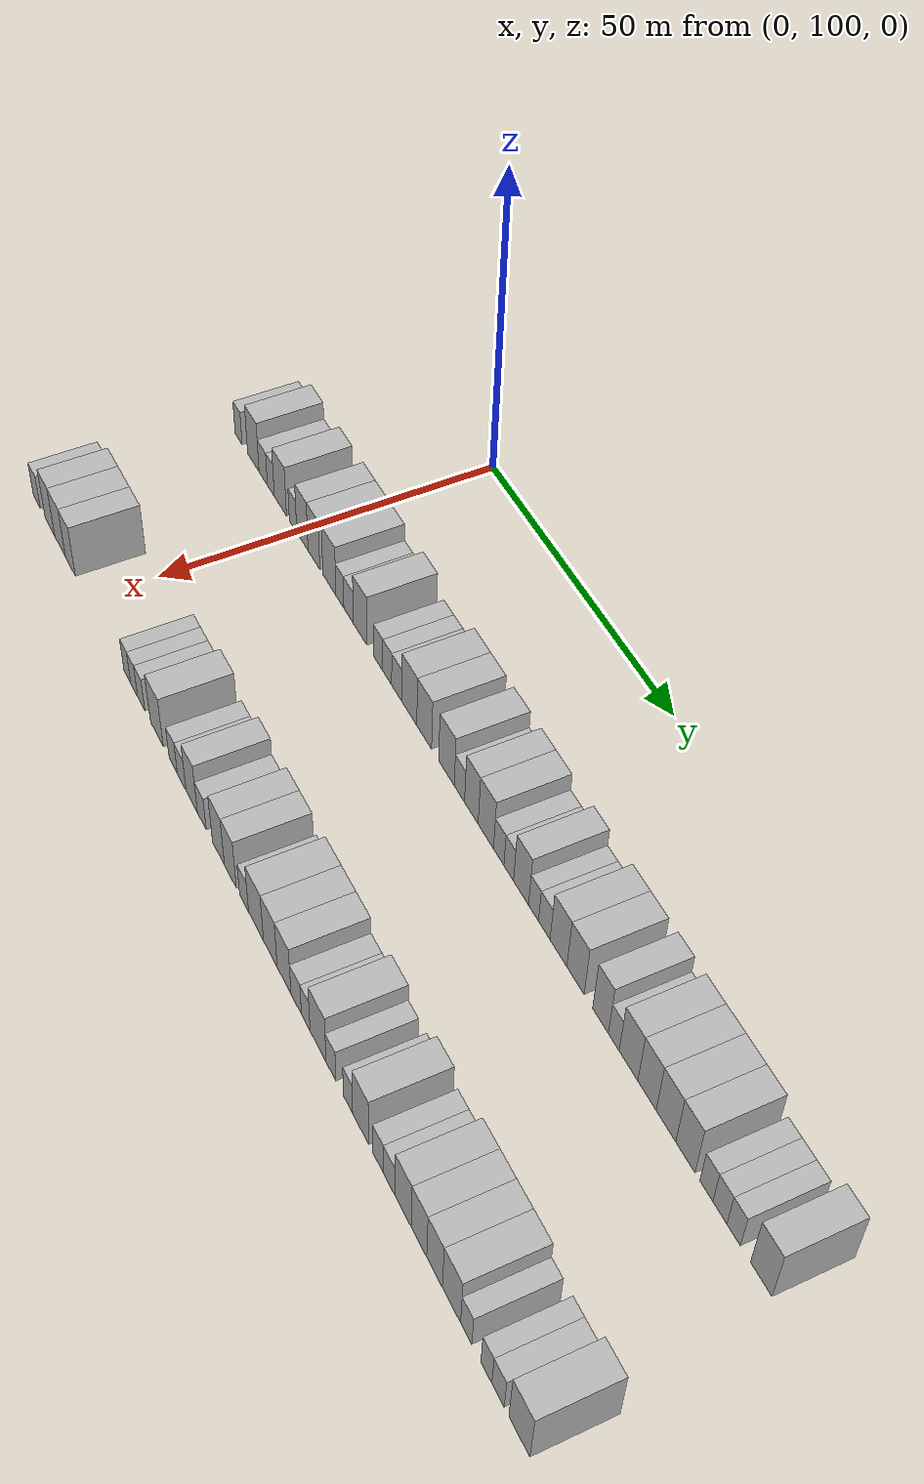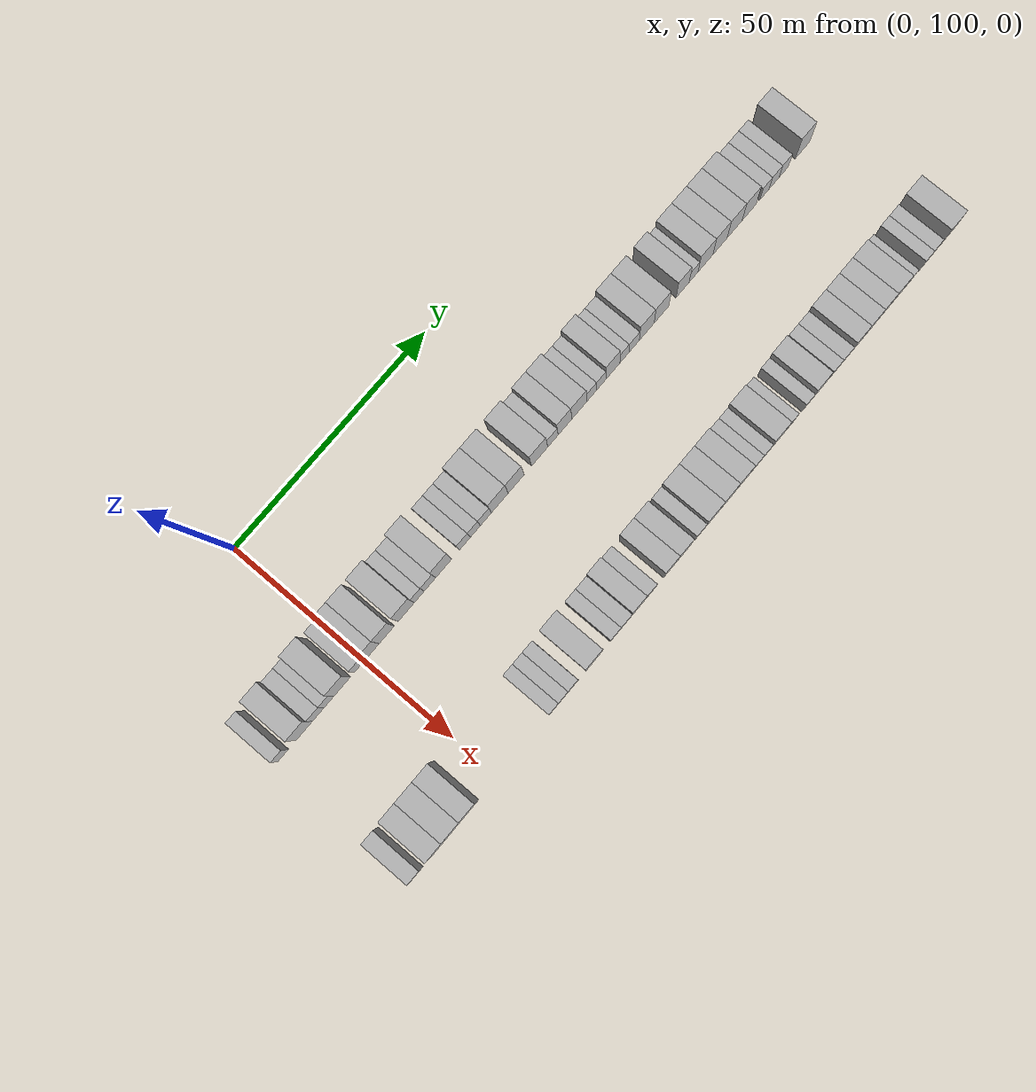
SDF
<sdf version="1.6">
 <world name="default">
  <model name="building_73">
   <static>1</static>
   <pose>25.0000 79.5502 0 0.000000 0.000000 0.000000</pose>
   <link name="link">
    <pose>0 0 3.00 0 0 0</pose>
    <collision name="collision"><geometry><box><size>10.0000 2.5843 6.0000</size></box></geometry></collision>
    <visual name="visual">
     <cast_shadows>0</cast_shadows>
     <geometry><box><size>10.0000 2.5843 6.0000</size></box></geometry>
     <material>
      <script>
       <uri>model://HANNAS_wall/materials/scripts</uri>
       <uri>model://HANNAS_wall/materials/textures</uri>
       <name>vrc/HANNAS_wall</name>
      </script>
     </material>
    </visual>
   </link>
  </model>
  <model name="building_74">
   <static>1</static>
   <pose>25.0000 84.9042 0 0.000000 0.000000 0.000000</pose>
   <link name="link">
    <pose>0 0 4.50 0 0 0</pose>
    <collision name="collision"><geometry><box><size>10.0000 4.1237 9.0000</size></box></geometry></collision>
    <visual name="visual">
     <cast_shadows>0</cast_shadows>
     <geometry><box><size>10.0000 4.1237 9.0000</size></box></geometry>
     <material>
      <script>
       <uri>model://HANNAS_wall/materials/scripts</uri>
       <uri>model://HANNAS_wall/materials/textures</uri>
       <name>vrc/HANNAS_wall</name>
      </script>
     </material>
    </visual>
   </link>
  </model>
  <model name="building_75">
   <static>1</static>
   <pose>25.0000 88.4504 0 0.000000 0.000000 0.000000</pose>
   <link name="link">
    <pose>0 0 3.00 0 0 0</pose>
    <collision name="collision"><geometry><box><size>10.0000 2.9687 6.0000</size></box></geometry></collision>
    <visual name="visual">
     <cast_shadows>0</cast_shadows>
     <geometry><box><size>10.0000 2.9687 6.0000</size></box></geometry>
     <material>
      <script>
       <uri>model://HANNAS_wall/materials/scripts</uri>
       <uri>model://HANNAS_wall/materials/textures</uri>
       <name>vrc/HANNAS_wall</name>
      </script>
     </material>
    </visual>
   </link>
  </model>
  <model name="building_76">
   <static>1</static>
   <pose>25.0000 91.1566 0 0.000000 0.000000 0.000000</pose>
   <link name="link">
    <pose>0 0 3.00 0 0 0</pose>
    <collision name="collision"><geometry><box><size>10.0000 2.4437 6.0000</size></box></geometry></collision>
    <visual name="visual">
     <cast_shadows>0</cast_shadows>
     <geometry><box><size>10.0000 2.4437 6.0000</size></box></geometry>
     <material>
      <script>
       <uri>model://HANNAS_wall/materials/scripts</uri>
       <uri>model://HANNAS_wall/materials/textures</uri>
       <name>vrc/HANNAS_wall</name>
      </script>
     </material>
    </visual>
   </link>
  </model>
  <model name="building_77">
   <static>1</static>
   <pose>25.0000 94.4953 0 0.000000 0.000000 0.000000</pose>
   <link name="link">
    <pose>0 0 4.50 0 0 0</pose>
    <collision name="collision"><geometry><box><size>10.0000 4.2338 9.0000</size></box></geometry></collision>
    <visual name="visual">
     <cast_shadows>0</cast_shadows>
     <geometry><box><size>10.0000 4.2338 9.0000</size></box></geometry>
     <material>
      <script>
       <uri>model://HANNAS_wall/materials/scripts</uri>
       <uri>model://HANNAS_wall/materials/textures</uri>
       <name>vrc/HANNAS_wall</name>
      </script>
     </material>
    </visual>
   </link>
  </model>
  <model name="building_78">
   <static>1</static>
   <pose>25.0000 98.8649 0 0.000000 0.000000 0.000000</pose>
   <link name="link">
    <pose>0 0 3.00 0 0 0</pose>
    <collision name="collision"><geometry><box><size>10.0000 2.5053 6.0000</size></box></geometry></collision>
    <visual name="visual">
     <cast_shadows>0</cast_shadows>
     <geometry><box><size>10.0000 2.5053 6.0000</size></box></geometry>
     <material>
      <script>
       <uri>model://HANNAS_wall/materials/scripts</uri>
       <uri>model://HANNAS_wall/materials/textures</uri>
       <name>vrc/HANNAS_wall</name>
      </script>
     </material>
    </visual>
   </link>
  </model>
  <model name="building_79">
   <static>1</static>
   <pose>25.0000 102.0291 0 0.000000 0.000000 0.000000</pose>
   <link name="link">
    <pose>0 0 4.50 0 0 0</pose>
    <collision name="collision"><geometry><box><size>10.0000 3.8231 9.0000</size></box></geometry></collision>
    <visual name="visual">
     <cast_shadows>0</cast_shadows>
     <geometry><box><size>10.0000 3.8231 9.0000</size></box></geometry>
     <material>
      <script>
       <uri>model://HANNAS_wall/materials/scripts</uri>
       <uri>model://HANNAS_wall/materials/textures</uri>
       <name>vrc/HANNAS_wall</name>
      </script>
     </material>
    </visual>
   </link>
  </model>
  <model name="building_80">
   <static>1</static>
   <pose>25.0000 105.8863 0 0.000000 0.000000 0.000000</pose>
   <link name="link">
    <pose>0 0 4.50 0 0 0</pose>
    <collision name="collision"><geometry><box><size>10.0000 3.8912 9.0000</size></box></geometry></collision>
    <visual name="visual">
     <cast_shadows>0</cast_shadows>
     <geometry><box><size>10.0000 3.8912 9.0000</size></box></geometry>
     <material>
      <script>
       <uri>model://HANNAS_wall/materials/scripts</uri>
       <uri>model://HANNAS_wall/materials/textures</uri>
       <name>vrc/HANNAS_wall</name>
      </script>
     </material>
    </visual>
   </link>
  </model>
  <model name="building_81">
   <static>1</static>
   <pose>25.0000 110.9512 0 0.000000 0.000000 0.000000</pose>
   <link name="link">
    <pose>0 0 4.50 0 0 0</pose>
    <collision name="collision"><geometry><box><size>10.0000 4.2387 9.0000</size></box></geometry></collision>
    <visual name="visual">
     <cast_shadows>0</cast_shadows>
     <geometry><box><size>10.0000 4.2387 9.0000</size></box></geometry>
     <material>
      <script>
       <uri>model://HANNAS_wall/materials/scripts</uri>
       <uri>model://HANNAS_wall/materials/textures</uri>
       <name>vrc/HANNAS_wall</name>
      </script>
     </material>
    </visual>
   </link>
  </model>
  <model name="building_82">
   <static>1</static>
   <pose>25.0000 114.3364 0 0.000000 0.000000 0.000000</pose>
   <link name="link">
    <pose>0 0 3.00 0 0 0</pose>
    <collision name="collision"><geometry><box><size>10.0000 2.5316 6.0000</size></box></geometry></collision>
    <visual name="visual">
     <cast_shadows>0</cast_shadows>
     <geometry><box><size>10.0000 2.5316 6.0000</size></box></geometry>
     <material>
      <script>
       <uri>model://HANNAS_wall/materials/scripts</uri>
       <uri>model://HANNAS_wall/materials/textures</uri>
       <name>vrc/HANNAS_wall</name>
      </script>
     </material>
    </visual>
   </link>
  </model>
  <model name="building_83">
   <static>1</static>
   <pose>25.0000 117.0939 0 0.000000 0.000000 0.000000</pose>
   <link name="link">
    <pose>0 0 3.00 0 0 0</pose>
    <collision name="collision"><geometry><box><size>10.0000 2.9833 6.0000</size></box></geometry></collision>
    <visual name="visual">
     <cast_shadows>0</cast_shadows>
     <geometry><box><size>10.0000 2.9833 6.0000</size></box></geometry>
     <material>
      <script>
       <uri>model://HANNAS_wall/materials/scripts</uri>
       <uri>model://HANNAS_wall/materials/textures</uri>
       <name>vrc/HANNAS_wall</name>
      </script>
     </material>
    </visual>
   </link>
  </model>
  <model name="building_84">
   <static>1</static>
   <pose>25.0000 120.7058 0 0.000000 0.000000 0.000000</pose>
   <link name="link">
    <pose>0 0 4.50 0 0 0</pose>
    <collision name="collision"><geometry><box><size>10.0000 4.2406 9.0000</size></box></geometry></collision>
    <visual name="visual">
     <cast_shadows>0</cast_shadows>
     <geometry><box><size>10.0000 4.2406 9.0000</size></box></geometry>
     <material>
      <script>
       <uri>model://HANNAS_wall/materials/scripts</uri>
       <uri>model://HANNAS_wall/materials/textures</uri>
       <name>vrc/HANNAS_wall</name>
      </script>
     </material>
    </visual>
   </link>
  </model>
  <model name="building_85">
   <static>1</static>
   <pose>25.0000 126.2651 0 0.000000 0.000000 0.000000</pose>
   <link name="link">
    <pose>0 0 3.00 0 0 0</pose>
    <collision name="collision"><geometry><box><size>10.0000 2.8779 6.0000</size></box></geometry></collision>
    <visual name="visual">
     <cast_shadows>0</cast_shadows>
     <geometry><box><size>10.0000 2.8779 6.0000</size></box></geometry>
     <material>
      <script>
       <uri>model://HANNAS_wall/materials/scripts</uri>
       <uri>model://HANNAS_wall/materials/textures</uri>
       <name>vrc/HANNAS_wall</name>
      </script>
     </material>
    </visual>
   </link>
  </model>
  <model name="building_86">
   <static>1</static>
   <pose>25.0000 129.0190 0 0.000000 0.000000 0.000000</pose>
   <link name="link">
    <pose>0 0 3.00 0 0 0</pose>
    <collision name="collision"><geometry><box><size>10.0000 2.6300 6.0000</size></box></geometry></collision>
    <visual name="visual">
     <cast_shadows>0</cast_shadows>
     <geometry><box><size>10.0000 2.6300 6.0000</size></box></geometry>
     <material>
      <script>
       <uri>model://HANNAS_wall/materials/scripts</uri>
       <uri>model://HANNAS_wall/materials/textures</uri>
       <name>vrc/HANNAS_wall</name>
      </script>
     </material>
    </visual>
   </link>
  </model>
  <model name="building_87">
   <static>1</static>
   <pose>25.0000 131.8046 0 0.000000 0.000000 0.000000</pose>
   <link name="link">
    <pose>0 0 3.00 0 0 0</pose>
    <collision name="collision"><geometry><box><size>10.0000 2.9410 6.0000</size></box></geometry></collision>
    <visual name="visual">
     <cast_shadows>0</cast_shadows>
     <geometry><box><size>10.0000 2.9410 6.0000</size></box></geometry>
     <material>
      <script>
       <uri>model://HANNAS_wall/materials/scripts</uri>
       <uri>model://HANNAS_wall/materials/textures</uri>
       <name>vrc/HANNAS_wall</name>
      </script>
     </material>
    </visual>
   </link>
  </model>
  <model name="building_88">
   <static>1</static>
   <pose>25.0000 135.4994 0 0.000000 0.000000 0.000000</pose>
   <link name="link">
    <pose>0 0 4.50 0 0 0</pose>
    <collision name="collision"><geometry><box><size>10.0000 4.4486 9.0000</size></box></geometry></collision>
    <visual name="visual">
     <cast_shadows>0</cast_shadows>
     <geometry><box><size>10.0000 4.4486 9.0000</size></box></geometry>
     <material>
      <script>
       <uri>model://HANNAS_wall/materials/scripts</uri>
       <uri>model://HANNAS_wall/materials/textures</uri>
       <name>vrc/HANNAS_wall</name>
      </script>
     </material>
    </visual>
   </link>
  </model>
  <model name="building_89">
   <static>1</static>
   <pose>25.0000 139.8428 0 0.000000 0.000000 0.000000</pose>
   <link name="link">
    <pose>0 0 4.50 0 0 0</pose>
    <collision name="collision"><geometry><box><size>10.0000 4.2383 9.0000</size></box></geometry></collision>
    <visual name="visual">
     <cast_shadows>0</cast_shadows>
     <geometry><box><size>10.0000 4.2383 9.0000</size></box></geometry>
     <material>
      <script>
       <uri>model://HANNAS_wall/materials/scripts</uri>
       <uri>model://HANNAS_wall/materials/textures</uri>
       <name>vrc/HANNAS_wall</name>
      </script>
     </material>
    </visual>
   </link>
  </model>
  <model name="building_90">
   <static>1</static>
   <pose>25.0000 146.1336 0 0.000000 0.000000 0.000000</pose>
   <link name="link">
    <pose>0 0 4.50 0 0 0</pose>
    <collision name="collision"><geometry><box><size>10.0000 4.3431 9.0000</size></box></geometry></collision>
    <visual name="visual">
     <cast_shadows>0</cast_shadows>
     <geometry><box><size>10.0000 4.3431 9.0000</size></box></geometry>
     <material>
      <script>
       <uri>model://HANNAS_wall/materials/scripts</uri>
       <uri>model://HANNAS_wall/materials/textures</uri>
       <name>vrc/HANNAS_wall</name>
      </script>
     </material>
    </visual>
   </link>
  </model>
  <model name="building_91">
   <static>1</static>
   <pose>25.0000 149.7104 0 0.000000 0.000000 0.000000</pose>
   <link name="link">
    <pose>0 0 3.00 0 0 0</pose>
    <collision name="collision"><geometry><box><size>10.0000 2.8105 6.0000</size></box></geometry></collision>
    <visual name="visual">
     <cast_shadows>0</cast_shadows>
     <geometry><box><size>10.0000 2.8105 6.0000</size></box></geometry>
     <material>
      <script>
       <uri>model://HANNAS_wall/materials/scripts</uri>
       <uri>model://HANNAS_wall/materials/textures</uri>
       <name>vrc/HANNAS_wall</name>
      </script>
     </material>
    </visual>
   </link>
  </model>
  <model name="building_92">
   <static>1</static>
   <pose>25.0000 152.9536 0 0.000000 0.000000 0.000000</pose>
   <link name="link">
    <pose>0 0 4.50 0 0 0</pose>
    <collision name="collision"><geometry><box><size>10.0000 3.6760 9.0000</size></box></geometry></collision>
    <visual name="visual">
     <cast_shadows>0</cast_shadows>
     <geometry><box><size>10.0000 3.6760 9.0000</size></box></geometry>
     <material>
      <script>
       <uri>model://HANNAS_wall/materials/scripts</uri>
       <uri>model://HANNAS_wall/materials/textures</uri>
       <name>vrc/HANNAS_wall</name>
      </script>
     </material>
    </visual>
   </link>
  </model>
  <model name="building_93">
   <static>1</static>
   <pose>25.0000 156.8311 0 0.000000 0.000000 0.000000</pose>
   <link name="link">
    <pose>0 0 4.50 0 0 0</pose>
    <collision name="collision"><geometry><box><size>10.0000 4.0789 9.0000</size></box></geometry></collision>
    <visual name="visual">
     <cast_shadows>0</cast_shadows>
     <geometry><box><size>10.0000 4.0789 9.0000</size></box></geometry>
     <material>
      <script>
       <uri>model://HANNAS_wall/materials/scripts</uri>
       <uri>model://HANNAS_wall/materials/textures</uri>
       <name>vrc/HANNAS_wall</name>
      </script>
     </material>
    </visual>
   </link>
  </model>
  <model name="building_94">
   <static>1</static>
   <pose>25.0000 160.2313 0 0.000000 0.000000 0.000000</pose>
   <link name="link">
    <pose>0 0 3.00 0 0 0</pose>
    <collision name="collision"><geometry><box><size>10.0000 2.7214 6.0000</size></box></geometry></collision>
    <visual name="visual">
     <cast_shadows>0</cast_shadows>
     <geometry><box><size>10.0000 2.7214 6.0000</size></box></geometry>
     <material>
      <script>
       <uri>model://HANNAS_wall/materials/scripts</uri>
       <uri>model://HANNAS_wall/materials/textures</uri>
       <name>vrc/HANNAS_wall</name>
      </script>
     </material>
    </visual>
   </link>
  </model>
  <model name="building_95">
   <static>1</static>
   <pose>25.0000 162.8308 0 0.000000 0.000000 0.000000</pose>
   <link name="link">
    <pose>0 0 3.00 0 0 0</pose>
    <collision name="collision"><geometry><box><size>10.0000 2.4776 6.0000</size></box></geometry></collision>
    <visual name="visual">
     <cast_shadows>0</cast_shadows>
     <geometry><box><size>10.0000 2.4776 6.0000</size></box></geometry>
     <material>
      <script>
       <uri>model://HANNAS_wall/materials/scripts</uri>
       <uri>model://HANNAS_wall/materials/textures</uri>
       <name>vrc/HANNAS_wall</name>
      </script>
     </material>
    </visual>
   </link>
  </model>
  <model name="building_96">
   <static>1</static>
   <pose>25.0000 165.9773 0 0.000000 0.000000 0.000000</pose>
   <link name="link">
    <pose>0 0 4.50 0 0 0</pose>
    <collision name="collision"><geometry><box><size>10.0000 3.8154 9.0000</size></box></geometry></collision>
    <visual name="visual">
     <cast_shadows>0</cast_shadows>
     <geometry><box><size>10.0000 3.8154 9.0000</size></box></geometry>
     <material>
      <script>
       <uri>model://HANNAS_wall/materials/scripts</uri>
       <uri>model://HANNAS_wall/materials/textures</uri>
       <name>vrc/HANNAS_wall</name>
      </script>
     </material>
    </visual>
   </link>
  </model>
  <model name="building_97">
   <static>1</static>
   <pose>25.0000 169.1264 0 0.000000 0.000000 0.000000</pose>
   <link name="link">
    <pose>0 0 3.00 0 0 0</pose>
    <collision name="collision"><geometry><box><size>10.0000 2.4827 6.0000</size></box></geometry></collision>
    <visual name="visual">
     <cast_shadows>0</cast_shadows>
     <geometry><box><size>10.0000 2.4827 6.0000</size></box></geometry>
     <material>
      <script>
       <uri>model://HANNAS_wall/materials/scripts</uri>
       <uri>model://HANNAS_wall/materials/textures</uri>
       <name>vrc/HANNAS_wall</name>
      </script>
     </material>
    </visual>
   </link>
  </model>
  <model name="building_98">
   <static>1</static>
   <pose>25.0000 171.7998 0 0.000000 0.000000 0.000000</pose>
   <link name="link">
    <pose>0 0 3.00 0 0 0</pose>
    <collision name="collision"><geometry><box><size>10.0000 2.8640 6.0000</size></box></geometry></collision>
    <visual name="visual">
     <cast_shadows>0</cast_shadows>
     <geometry><box><size>10.0000 2.8640 6.0000</size></box></geometry>
     <material>
      <script>
       <uri>model://HANNAS_wall/materials/scripts</uri>
       <uri>model://HANNAS_wall/materials/textures</uri>
       <name>vrc/HANNAS_wall</name>
      </script>
     </material>
    </visual>
   </link>
  </model>
  <model name="building_99">
   <static>1</static>
   <pose>25.0000 175.2708 0 0.000000 0.000000 0.000000</pose>
   <link name="link">
    <pose>0 0 4.50 0 0 0</pose>
    <collision name="collision"><geometry><box><size>10.0000 4.0781 9.0000</size></box></geometry></collision>
    <visual name="visual">
     <cast_shadows>0</cast_shadows>
     <geometry><box><size>10.0000 4.0781 9.0000</size></box></geometry>
     <material>
      <script>
       <uri>model://HANNAS_wall/materials/scripts</uri>
       <uri>model://HANNAS_wall/materials/textures</uri>
       <name>vrc/HANNAS_wall</name>
      </script>
     </material>
    </visual>
   </link>
  </model>
  <model name="building_100">
   <static>1</static>
   <pose>25.0000 179.3699 0 0.000000 0.000000 0.000000</pose>
   <link name="link">
    <pose>0 0 4.50 0 0 0</pose>
    <collision name="collision"><geometry><box><size>10.0000 4.1201 9.0000</size></box></geometry></collision>
    <visual name="visual">
     <cast_shadows>0</cast_shadows>
     <geometry><box><size>10.0000 4.1201 9.0000</size></box></geometry>
     <material>
      <script>
       <uri>model://HANNAS_wall/materials/scripts</uri>
       <uri>model://HANNAS_wall/materials/textures</uri>
       <name>vrc/HANNAS_wall</name>
      </script>
     </material>
    </visual>
   </link>
  </model>
  <model name="building_101">
   <static>1</static>
   <pose>25.0000 185.2383 0 0.000000 0.000000 0.000000</pose>
   <link name="link">
    <pose>0 0 4.50 0 0 0</pose>
    <collision name="collision"><geometry><box><size>10.0000 3.6167 9.0000</size></box></geometry></collision>
    <visual name="visual">
     <cast_shadows>0</cast_shadows>
     <geometry><box><size>10.0000 3.6167 9.0000</size></box></geometry>
     <material>
      <script>
       <uri>model://HANNAS_wall/materials/scripts</uri>
       <uri>model://HANNAS_wall/materials/textures</uri>
       <name>vrc/HANNAS_wall</name>
      </script>
     </material>
    </visual>
   </link>
  </model>
  <model name="building_102">
   <static>1</static>
   <pose>25.0000 188.2729 0 0.000000 0.000000 0.000000</pose>
   <link name="link">
    <pose>0 0 3.00 0 0 0</pose>
    <collision name="collision"><geometry><box><size>10.0000 2.4525 6.0000</size></box></geometry></collision>
    <visual name="visual">
     <cast_shadows>0</cast_shadows>
     <geometry><box><size>10.0000 2.4525 6.0000</size></box></geometry>
     <material>
      <script>
       <uri>model://HANNAS_wall/materials/scripts</uri>
       <uri>model://HANNAS_wall/materials/textures</uri>
       <name>vrc/HANNAS_wall</name>
      </script>
     </material>
    </visual>
   </link>
  </model>
  <model name="building_103">
   <static>1</static>
   <pose>25.0000 191.5941 0 0.000000 0.000000 0.000000</pose>
   <link name="link">
    <pose>0 0 4.50 0 0 0</pose>
    <collision name="collision"><geometry><box><size>10.0000 4.1899 9.0000</size></box></geometry></collision>
    <visual name="visual">
     <cast_shadows>0</cast_shadows>
     <geometry><box><size>10.0000 4.1899 9.0000</size></box></geometry>
     <material>
      <script>
       <uri>model://HANNAS_wall/materials/scripts</uri>
       <uri>model://HANNAS_wall/materials/textures</uri>
       <name>vrc/HANNAS_wall</name>
      </script>
     </material>
    </visual>
   </link>
  </model>
  <model name="building_104">
   <static>1</static>
   <pose>25.0000 195.7097 0 0.000000 0.000000 0.000000</pose>
   <link name="link">
    <pose>0 0 4.50 0 0 0</pose>
    <collision name="collision"><geometry><box><size>10.0000 4.0414 9.0000</size></box></geometry></collision>
    <visual name="visual">
     <cast_shadows>0</cast_shadows>
     <geometry><box><size>10.0000 4.0414 9.0000</size></box></geometry>
     <material>
      <script>
       <uri>model://HANNAS_wall/materials/scripts</uri>
       <uri>model://HANNAS_wall/materials/textures</uri>
       <name>vrc/HANNAS_wall</name>
      </script>
     </material>
    </visual>
   </link>
  </model>
  <model name="building_105">
   <static>1</static>
   <pose>25.0000 199.8352 0 0.000000 0.000000 0.000000</pose>
   <link name="link">
    <pose>0 0 4.50 0 0 0</pose>
    <collision name="collision"><geometry><box><size>10.0000 4.2095 9.0000</size></box></geometry></collision>
    <visual name="visual">
     <cast_shadows>0</cast_shadows>
     <geometry><box><size>10.0000 4.2095 9.0000</size></box></geometry>
     <material>
      <script>
       <uri>model://HANNAS_wall/materials/scripts</uri>
       <uri>model://HANNAS_wall/materials/textures</uri>
       <name>vrc/HANNAS_wall</name>
      </script>
     </material>
    </visual>
   </link>
  </model>
  <model name="building_106">
   <static>1</static>
   <pose>25.0000 203.9604 0 0.000000 0.000000 0.000000</pose>
   <link name="link">
    <pose>0 0 4.50 0 0 0</pose>
    <collision name="collision"><geometry><box><size>10.0000 4.0410 9.0000</size></box></geometry></collision>
    <visual name="visual">
     <cast_shadows>0</cast_shadows>
     <geometry><box><size>10.0000 4.0410 9.0000</size></box></geometry>
     <material>
      <script>
       <uri>model://HANNAS_wall/materials/scripts</uri>
       <uri>model://HANNAS_wall/materials/textures</uri>
       <name>vrc/HANNAS_wall</name>
      </script>
     </material>
    </visual>
   </link>
  </model>
  <model name="building_107">
   <static>1</static>
   <pose>25.0000 208.3208 0 0.000000 0.000000 0.000000</pose>
   <link name="link">
    <pose>0 0 3.00 0 0 0</pose>
    <collision name="collision"><geometry><box><size>10.0000 2.6797 6.0000</size></box></geometry></collision>
    <visual name="visual">
     <cast_shadows>0</cast_shadows>
     <geometry><box><size>10.0000 2.6797 6.0000</size></box></geometry>
     <material>
      <script>
       <uri>model://HANNAS_wall/materials/scripts</uri>
       <uri>model://HANNAS_wall/materials/textures</uri>
       <name>vrc/HANNAS_wall</name>
      </script>
     </material>
    </visual>
   </link>
  </model>
  <model name="building_108">
   <static>1</static>
   <pose>25.0000 211.0765 0 0.000000 0.000000 0.000000</pose>
   <link name="link">
    <pose>0 0 3.00 0 0 0</pose>
    <collision name="collision"><geometry><box><size>10.0000 2.8317 6.0000</size></box></geometry></collision>
    <visual name="visual">
     <cast_shadows>0</cast_shadows>
     <geometry><box><size>10.0000 2.8317 6.0000</size></box></geometry>
     <material>
      <script>
       <uri>model://HANNAS_wall/materials/scripts</uri>
       <uri>model://HANNAS_wall/materials/textures</uri>
       <name>vrc/HANNAS_wall</name>
      </script>
     </material>
    </visual>
   </link>
  </model>
  <model name="building_109">
   <static>1</static>
   <pose>25.0000 213.8401 0 0.000000 0.000000 0.000000</pose>
   <link name="link">
    <pose>0 0 3.00 0 0 0</pose>
    <collision name="collision"><geometry><box><size>10.0000 2.6953 6.0000</size></box></geometry></collision>
    <visual name="visual">
     <cast_shadows>0</cast_shadows>
     <geometry><box><size>10.0000 2.6953 6.0000</size></box></geometry>
     <material>
      <script>
       <uri>model://HANNAS_wall/materials/scripts</uri>
       <uri>model://HANNAS_wall/materials/textures</uri>
       <name>vrc/HANNAS_wall</name>
      </script>
     </material>
    </visual>
   </link>
  </model>
  <model name="building_110">
   <static>1</static>
   <pose>25.0000 219.2642 0 0.000000 0.000000 0.000000</pose>
   <link name="link">
    <pose>0 0 4.50 0 0 0</pose>
    <collision name="collision"><geometry><box><size>10.0000 4.1529 9.0000</size></box></geometry></collision>
    <visual name="visual">
     <cast_shadows>0</cast_shadows>
     <geometry><box><size>10.0000 4.1529 9.0000</size></box></geometry>
     <material>
      <script>
       <uri>model://HANNAS_wall/materials/scripts</uri>
       <uri>model://HANNAS_wall/materials/textures</uri>
       <name>vrc/HANNAS_wall</name>
      </script>
     </material>
    </visual>
   </link>
  </model>
  <model name="building_181">
   <static>1</static>
   <pose>55.0000 79.4814 0 0.000000 0.000000 0.000000</pose>
   <link name="link">
    <pose>0 0 3.00 0 0 0</pose>
    <collision name="collision"><geometry><box><size>10.0000 2.9593 6.0000</size></box></geometry></collision>
    <visual name="visual">
     <cast_shadows>0</cast_shadows>
     <geometry><box><size>10.0000 2.9593 6.0000</size></box></geometry>
     <material>
      <script>
       <uri>model://HANNAS_wall/materials/scripts</uri>
       <uri>model://HANNAS_wall/materials/textures</uri>
       <name>vrc/HANNAS_wall</name>
      </script>
     </material>
    </visual>
   </link>
  </model>
  <model name="building_182">
   <static>1</static>
   <pose>55.0000 84.9376 0 0.000000 0.000000 0.000000</pose>
   <link name="link">
    <pose>0 0 4.50 0 0 0</pose>
    <collision name="collision"><geometry><box><size>10.0000 3.9532 9.0000</size></box></geometry></collision>
    <visual name="visual">
     <cast_shadows>0</cast_shadows>
     <geometry><box><size>10.0000 3.9532 9.0000</size></box></geometry>
     <material>
      <script>
       <uri>model://HANNAS_wall/materials/scripts</uri>
       <uri>model://HANNAS_wall/materials/textures</uri>
       <name>vrc/HANNAS_wall</name>
      </script>
     </material>
    </visual>
   </link>
  </model>
  <model name="building_183">
   <static>1</static>
   <pose>55.0000 89.0873 0 0.000000 0.000000 0.000000</pose>
   <link name="link">
    <pose>0 0 4.50 0 0 0</pose>
    <collision name="collision"><geometry><box><size>10.0000 4.3462 9.0000</size></box></geometry></collision>
    <visual name="visual">
     <cast_shadows>0</cast_shadows>
     <geometry><box><size>10.0000 4.3462 9.0000</size></box></geometry>
     <material>
      <script>
       <uri>model://HANNAS_wall/materials/scripts</uri>
       <uri>model://HANNAS_wall/materials/textures</uri>
       <name>vrc/HANNAS_wall</name>
      </script>
     </material>
    </visual>
   </link>
  </model>
  <model name="building_184">
   <static>1</static>
   <pose>55.0000 93.1995 0 0.000000 0.000000 0.000000</pose>
   <link name="link">
    <pose>0 0 4.50 0 0 0</pose>
    <collision name="collision"><geometry><box><size>10.0000 3.8783 9.0000</size></box></geometry></collision>
    <visual name="visual">
     <cast_shadows>0</cast_shadows>
     <geometry><box><size>10.0000 3.8783 9.0000</size></box></geometry>
     <material>
      <script>
       <uri>model://HANNAS_wall/materials/scripts</uri>
       <uri>model://HANNAS_wall/materials/textures</uri>
       <name>vrc/HANNAS_wall</name>
      </script>
     </material>
    </visual>
   </link>
  </model>
  <model name="building_185">
   <static>1</static>
   <pose>55.0000 114.7772 0 0.000000 0.000000 0.000000</pose>
   <link name="link">
    <pose>0 0 3.00 0 0 0</pose>
    <collision name="collision"><geometry><box><size>10.0000 2.4257 6.0000</size></box></geometry></collision>
    <visual name="visual">
     <cast_shadows>0</cast_shadows>
     <geometry><box><size>10.0000 2.4257 6.0000</size></box></geometry>
     <material>
      <script>
       <uri>model://HANNAS_wall/materials/scripts</uri>
       <uri>model://HANNAS_wall/materials/textures</uri>
       <name>vrc/HANNAS_wall</name>
      </script>
     </material>
    </visual>
   </link>
  </model>
  <model name="building_186">
   <static>1</static>
   <pose>55.0000 117.2415 0 0.000000 0.000000 0.000000</pose>
   <link name="link">
    <pose>0 0 3.00 0 0 0</pose>
    <collision name="collision"><geometry><box><size>10.0000 2.5029 6.0000</size></box></geometry></collision>
    <visual name="visual">
     <cast_shadows>0</cast_shadows>
     <geometry><box><size>10.0000 2.5029 6.0000</size></box></geometry>
     <material>
      <script>
       <uri>model://HANNAS_wall/materials/scripts</uri>
       <uri>model://HANNAS_wall/materials/textures</uri>
       <name>vrc/HANNAS_wall</name>
      </script>
     </material>
    </visual>
   </link>
  </model>
  <model name="building_187">
   <static>1</static>
   <pose>55.0000 119.7700 0 0.000000 0.000000 0.000000</pose>
   <link name="link">
    <pose>0 0 3.00 0 0 0</pose>
    <collision name="collision"><geometry><box><size>10.0000 2.5542 6.0000</size></box></geometry></collision>
    <visual name="visual">
     <cast_shadows>0</cast_shadows>
     <geometry><box><size>10.0000 2.5542 6.0000</size></box></geometry>
     <material>
      <script>
       <uri>model://HANNAS_wall/materials/scripts</uri>
       <uri>model://HANNAS_wall/materials/textures</uri>
       <name>vrc/HANNAS_wall</name>
      </script>
     </material>
    </visual>
   </link>
  </model>
  <model name="building_188">
   <static>1</static>
   <pose>55.0000 125.2602 0 0.000000 0.000000 0.000000</pose>
   <link name="link">
    <pose>0 0 4.50 0 0 0</pose>
    <collision name="collision"><geometry><box><size>10.0000 4.4262 9.0000</size></box></geometry></collision>
    <visual name="visual">
     <cast_shadows>0</cast_shadows>
     <geometry><box><size>10.0000 4.4262 9.0000</size></box></geometry>
     <material>
      <script>
       <uri>model://HANNAS_wall/materials/scripts</uri>
       <uri>model://HANNAS_wall/materials/textures</uri>
       <name>vrc/HANNAS_wall</name>
      </script>
     </material>
    </visual>
   </link>
  </model>
  <model name="building_189">
   <static>1</static>
   <pose>55.0000 130.8544 0 0.000000 0.000000 0.000000</pose>
   <link name="link">
    <pose>0 0 3.00 0 0 0</pose>
    <collision name="collision"><geometry><box><size>10.0000 2.7620 6.0000</size></box></geometry></collision>
    <visual name="visual">
     <cast_shadows>0</cast_shadows>
     <geometry><box><size>10.0000 2.7620 6.0000</size></box></geometry>
     <material>
      <script>
       <uri>model://HANNAS_wall/materials/scripts</uri>
       <uri>model://HANNAS_wall/materials/textures</uri>
       <name>vrc/HANNAS_wall</name>
      </script>
     </material>
    </visual>
   </link>
  </model>
  <model name="building_190">
   <static>1</static>
   <pose>55.0000 133.6897 0 0.000000 0.000000 0.000000</pose>
   <link name="link">
    <pose>0 0 3.00 0 0 0</pose>
    <collision name="collision"><geometry><box><size>10.0000 2.9087 6.0000</size></box></geometry></collision>
    <visual name="visual">
     <cast_shadows>0</cast_shadows>
     <geometry><box><size>10.0000 2.9087 6.0000</size></box></geometry>
     <material>
      <script>
       <uri>model://HANNAS_wall/materials/scripts</uri>
       <uri>model://HANNAS_wall/materials/textures</uri>
       <name>vrc/HANNAS_wall</name>
      </script>
     </material>
    </visual>
   </link>
  </model>
  <model name="building_191">
   <static>1</static>
   <pose>55.0000 137.0020 0 0.000000 0.000000 0.000000</pose>
   <link name="link">
    <pose>0 0 4.50 0 0 0</pose>
    <collision name="collision"><geometry><box><size>10.0000 3.7158 9.0000</size></box></geometry></collision>
    <visual name="visual">
     <cast_shadows>0</cast_shadows>
     <geometry><box><size>10.0000 3.7158 9.0000</size></box></geometry>
     <material>
      <script>
       <uri>model://HANNAS_wall/materials/scripts</uri>
       <uri>model://HANNAS_wall/materials/textures</uri>
       <name>vrc/HANNAS_wall</name>
      </script>
     </material>
    </visual>
   </link>
  </model>
  <model name="building_192">
   <static>1</static>
   <pose>55.0000 140.2841 0 0.000000 0.000000 0.000000</pose>
   <link name="link">
    <pose>0 0 3.00 0 0 0</pose>
    <collision name="collision"><geometry><box><size>10.0000 2.8484 6.0000</size></box></geometry></collision>
    <visual name="visual">
     <cast_shadows>0</cast_shadows>
     <geometry><box><size>10.0000 2.8484 6.0000</size></box></geometry>
     <material>
      <script>
       <uri>model://HANNAS_wall/materials/scripts</uri>
       <uri>model://HANNAS_wall/materials/textures</uri>
       <name>vrc/HANNAS_wall</name>
      </script>
     </material>
    </visual>
   </link>
  </model>
  <model name="building_193">
   <static>1</static>
   <pose>55.0000 145.5821 0 0.000000 0.000000 0.000000</pose>
   <link name="link">
    <pose>0 0 4.50 0 0 0</pose>
    <collision name="collision"><geometry><box><size>10.0000 3.7476 9.0000</size></box></geometry></collision>
    <visual name="visual">
     <cast_shadows>0</cast_shadows>
     <geometry><box><size>10.0000 3.7476 9.0000</size></box></geometry>
     <material>
      <script>
       <uri>model://HANNAS_wall/materials/scripts</uri>
       <uri>model://HANNAS_wall/materials/textures</uri>
       <name>vrc/HANNAS_wall</name>
      </script>
     </material>
    </visual>
   </link>
  </model>
  <model name="building_194">
   <static>1</static>
   <pose>55.0000 149.3116 0 0.000000 0.000000 0.000000</pose>
   <link name="link">
    <pose>0 0 4.50 0 0 0</pose>
    <collision name="collision"><geometry><box><size>10.0000 3.7114 9.0000</size></box></geometry></collision>
    <visual name="visual">
     <cast_shadows>0</cast_shadows>
     <geometry><box><size>10.0000 3.7114 9.0000</size></box></geometry>
     <material>
      <script>
       <uri>model://HANNAS_wall/materials/scripts</uri>
       <uri>model://HANNAS_wall/materials/textures</uri>
       <name>vrc/HANNAS_wall</name>
      </script>
     </material>
    </visual>
   </link>
  </model>
  <model name="building_195">
   <static>1</static>
   <pose>55.0000 153.5320 0 0.000000 0.000000 0.000000</pose>
   <link name="link">
    <pose>0 0 3.00 0 0 0</pose>
    <collision name="collision"><geometry><box><size>10.0000 2.7294 6.0000</size></box></geometry></collision>
    <visual name="visual">
     <cast_shadows>0</cast_shadows>
     <geometry><box><size>10.0000 2.7294 6.0000</size></box></geometry>
     <material>
      <script>
       <uri>model://HANNAS_wall/materials/scripts</uri>
       <uri>model://HANNAS_wall/materials/textures</uri>
       <name>vrc/HANNAS_wall</name>
      </script>
     </material>
    </visual>
   </link>
  </model>
  <model name="building_196">
   <static>1</static>
   <pose>55.0000 157.1135 0 0.000000 0.000000 0.000000</pose>
   <link name="link">
    <pose>0 0 4.50 0 0 0</pose>
    <collision name="collision"><geometry><box><size>10.0000 4.4336 9.0000</size></box></geometry></collision>
    <visual name="visual">
     <cast_shadows>0</cast_shadows>
     <geometry><box><size>10.0000 4.4336 9.0000</size></box></geometry>
     <material>
      <script>
       <uri>model://HANNAS_wall/materials/scripts</uri>
       <uri>model://HANNAS_wall/materials/textures</uri>
       <name>vrc/HANNAS_wall</name>
      </script>
     </material>
    </visual>
   </link>
  </model>
  <model name="building_197">
   <static>1</static>
   <pose>55.0000 161.3363 0 0.000000 0.000000 0.000000</pose>
   <link name="link">
    <pose>0 0 4.50 0 0 0</pose>
    <collision name="collision"><geometry><box><size>10.0000 4.0120 9.0000</size></box></geometry></collision>
    <visual name="visual">
     <cast_shadows>0</cast_shadows>
     <geometry><box><size>10.0000 4.0120 9.0000</size></box></geometry>
     <material>
      <script>
       <uri>model://HANNAS_wall/materials/scripts</uri>
       <uri>model://HANNAS_wall/materials/textures</uri>
       <name>vrc/HANNAS_wall</name>
      </script>
     </material>
    </visual>
   </link>
  </model>
  <model name="building_198">
   <static>1</static>
   <pose>55.0000 165.3292 0 0.000000 0.000000 0.000000</pose>
   <link name="link">
    <pose>0 0 4.50 0 0 0</pose>
    <collision name="collision"><geometry><box><size>10.0000 3.9739 9.0000</size></box></geometry></collision>
    <visual name="visual">
     <cast_shadows>0</cast_shadows>
     <geometry><box><size>10.0000 3.9739 9.0000</size></box></geometry>
     <material>
      <script>
       <uri>model://HANNAS_wall/materials/scripts</uri>
       <uri>model://HANNAS_wall/materials/textures</uri>
       <name>vrc/HANNAS_wall</name>
      </script>
     </material>
    </visual>
   </link>
  </model>
  <model name="building_199">
   <static>1</static>
   <pose>55.0000 168.7745 0 0.000000 0.000000 0.000000</pose>
   <link name="link">
    <pose>0 0 3.00 0 0 0</pose>
    <collision name="collision"><geometry><box><size>10.0000 2.9167 6.0000</size></box></geometry></collision>
    <visual name="visual">
     <cast_shadows>0</cast_shadows>
     <geometry><box><size>10.0000 2.9167 6.0000</size></box></geometry>
     <material>
      <script>
       <uri>model://HANNAS_wall/materials/scripts</uri>
       <uri>model://HANNAS_wall/materials/textures</uri>
       <name>vrc/HANNAS_wall</name>
      </script>
     </material>
    </visual>
   </link>
  </model>
  <model name="building_200">
   <static>1</static>
   <pose>55.0000 171.4478 0 0.000000 0.000000 0.000000</pose>
   <link name="link">
    <pose>0 0 3.00 0 0 0</pose>
    <collision name="collision"><geometry><box><size>10.0000 2.4299 6.0000</size></box></geometry></collision>
    <visual name="visual">
     <cast_shadows>0</cast_shadows>
     <geometry><box><size>10.0000 2.4299 6.0000</size></box></geometry>
     <material>
      <script>
       <uri>model://HANNAS_wall/materials/scripts</uri>
       <uri>model://HANNAS_wall/materials/textures</uri>
       <name>vrc/HANNAS_wall</name>
      </script>
     </material>
    </visual>
   </link>
  </model>
  <model name="building_201">
   <static>1</static>
   <pose>55.0000 174.8510 0 0.000000 0.000000 0.000000</pose>
   <link name="link">
    <pose>0 0 4.50 0 0 0</pose>
    <collision name="collision"><geometry><box><size>10.0000 4.3764 9.0000</size></box></geometry></collision>
    <visual name="visual">
     <cast_shadows>0</cast_shadows>
     <geometry><box><size>10.0000 4.3764 9.0000</size></box></geometry>
     <material>
      <script>
       <uri>model://HANNAS_wall/materials/scripts</uri>
       <uri>model://HANNAS_wall/materials/textures</uri>
       <name>vrc/HANNAS_wall</name>
      </script>
     </material>
    </visual>
   </link>
  </model>
  <model name="building_202">
   <static>1</static>
   <pose>55.0000 178.3510 0 0.000000 0.000000 0.000000</pose>
   <link name="link">
    <pose>0 0 3.00 0 0 0</pose>
    <collision name="collision"><geometry><box><size>10.0000 2.6235 6.0000</size></box></geometry></collision>
    <visual name="visual">
     <cast_shadows>0</cast_shadows>
     <geometry><box><size>10.0000 2.6235 6.0000</size></box></geometry>
     <material>
      <script>
       <uri>model://HANNAS_wall/materials/scripts</uri>
       <uri>model://HANNAS_wall/materials/textures</uri>
       <name>vrc/HANNAS_wall</name>
      </script>
     </material>
    </visual>
   </link>
  </model>
  <model name="building_203">
   <static>1</static>
   <pose>55.0000 182.8689 0 0.000000 0.000000 0.000000</pose>
   <link name="link">
    <pose>0 0 3.00 0 0 0</pose>
    <collision name="collision"><geometry><box><size>10.0000 2.4124 6.0000</size></box></geometry></collision>
    <visual name="visual">
     <cast_shadows>0</cast_shadows>
     <geometry><box><size>10.0000 2.4124 6.0000</size></box></geometry>
     <material>
      <script>
       <uri>model://HANNAS_wall/materials/scripts</uri>
       <uri>model://HANNAS_wall/materials/textures</uri>
       <name>vrc/HANNAS_wall</name>
      </script>
     </material>
    </visual>
   </link>
  </model>
  <model name="building_204">
   <static>1</static>
   <pose>55.0000 186.1512 0 0.000000 0.000000 0.000000</pose>
   <link name="link">
    <pose>0 0 4.50 0 0 0</pose>
    <collision name="collision"><geometry><box><size>10.0000 4.1523 9.0000</size></box></geometry></collision>
    <visual name="visual">
     <cast_shadows>0</cast_shadows>
     <geometry><box><size>10.0000 4.1523 9.0000</size></box></geometry>
     <material>
      <script>
       <uri>model://HANNAS_wall/materials/scripts</uri>
       <uri>model://HANNAS_wall/materials/textures</uri>
       <name>vrc/HANNAS_wall</name>
      </script>
     </material>
    </visual>
   </link>
  </model>
  <model name="building_205">
   <static>1</static>
   <pose>55.0000 190.5760 0 0.000000 0.000000 0.000000</pose>
   <link name="link">
    <pose>0 0 3.00 0 0 0</pose>
    <collision name="collision"><geometry><box><size>10.0000 2.6971 6.0000</size></box></geometry></collision>
    <visual name="visual">
     <cast_shadows>0</cast_shadows>
     <geometry><box><size>10.0000 2.6971 6.0000</size></box></geometry>
     <material>
      <script>
       <uri>model://HANNAS_wall/materials/scripts</uri>
       <uri>model://HANNAS_wall/materials/textures</uri>
       <name>vrc/HANNAS_wall</name>
      </script>
     </material>
    </visual>
   </link>
  </model>
  <model name="building_206">
   <static>1</static>
   <pose>55.0000 193.3898 0 0.000000 0.000000 0.000000</pose>
   <link name="link">
    <pose>0 0 3.00 0 0 0</pose>
    <collision name="collision"><geometry><box><size>10.0000 2.9306 6.0000</size></box></geometry></collision>
    <visual name="visual">
     <cast_shadows>0</cast_shadows>
     <geometry><box><size>10.0000 2.9306 6.0000</size></box></geometry>
     <material>
      <script>
       <uri>model://HANNAS_wall/materials/scripts</uri>
       <uri>model://HANNAS_wall/materials/textures</uri>
       <name>vrc/HANNAS_wall</name>
      </script>
     </material>
    </visual>
   </link>
  </model>
  <model name="building_207">
   <static>1</static>
   <pose>55.0000 196.8180 0 0.000000 0.000000 0.000000</pose>
   <link name="link">
    <pose>0 0 4.50 0 0 0</pose>
    <collision name="collision"><geometry><box><size>10.0000 3.9258 9.0000</size></box></geometry></collision>
    <visual name="visual">
     <cast_shadows>0</cast_shadows>
     <geometry><box><size>10.0000 3.9258 9.0000</size></box></geometry>
     <material>
      <script>
       <uri>model://HANNAS_wall/materials/scripts</uri>
       <uri>model://HANNAS_wall/materials/textures</uri>
       <name>vrc/HANNAS_wall</name>
      </script>
     </material>
    </visual>
   </link>
  </model>
  <model name="building_208">
   <static>1</static>
   <pose>55.0000 200.6401 0 0.000000 0.000000 0.000000</pose>
   <link name="link">
    <pose>0 0 4.50 0 0 0</pose>
    <collision name="collision"><geometry><box><size>10.0000 3.7184 9.0000</size></box></geometry></collision>
    <visual name="visual">
     <cast_shadows>0</cast_shadows>
     <geometry><box><size>10.0000 3.7184 9.0000</size></box></geometry>
     <material>
      <script>
       <uri>model://HANNAS_wall/materials/scripts</uri>
       <uri>model://HANNAS_wall/materials/textures</uri>
       <name>vrc/HANNAS_wall</name>
      </script>
     </material>
    </visual>
   </link>
  </model>
  <model name="building_209">
   <static>1</static>
   <pose>55.0000 204.3368 0 0.000000 0.000000 0.000000</pose>
   <link name="link">
    <pose>0 0 4.50 0 0 0</pose>
    <collision name="collision"><geometry><box><size>10.0000 3.6752 9.0000</size></box></geometry></collision>
    <visual name="visual">
     <cast_shadows>0</cast_shadows>
     <geometry><box><size>10.0000 3.6752 9.0000</size></box></geometry>
     <material>
      <script>
       <uri>model://HANNAS_wall/materials/scripts</uri>
       <uri>model://HANNAS_wall/materials/textures</uri>
       <name>vrc/HANNAS_wall</name>
      </script>
     </material>
    </visual>
   </link>
  </model>
  <model name="building_210">
   <static>1</static>
   <pose>55.0000 208.2633 0 0.000000 0.000000 0.000000</pose>
   <link name="link">
    <pose>0 0 4.50 0 0 0</pose>
    <collision name="collision"><geometry><box><size>10.0000 4.1778 9.0000</size></box></geometry></collision>
    <visual name="visual">
     <cast_shadows>0</cast_shadows>
     <geometry><box><size>10.0000 4.1778 9.0000</size></box></geometry>
     <material>
      <script>
       <uri>model://HANNAS_wall/materials/scripts</uri>
       <uri>model://HANNAS_wall/materials/textures</uri>
       <name>vrc/HANNAS_wall</name>
      </script>
     </material>
    </visual>
   </link>
  </model>
  <model name="building_211">
   <static>1</static>
   <pose>55.0000 211.6248 0 0.000000 0.000000 0.000000</pose>
   <link name="link">
    <pose>0 0 3.00 0 0 0</pose>
    <collision name="collision"><geometry><box><size>10.0000 2.5451 6.0000</size></box></geometry></collision>
    <visual name="visual">
     <cast_shadows>0</cast_shadows>
     <geometry><box><size>10.0000 2.5451 6.0000</size></box></geometry>
     <material>
      <script>
       <uri>model://HANNAS_wall/materials/scripts</uri>
       <uri>model://HANNAS_wall/materials/textures</uri>
       <name>vrc/HANNAS_wall</name>
      </script>
     </material>
    </visual>
   </link>
  </model>
  <model name="building_212">
   <static>1</static>
   <pose>55.0000 216.1034 0 0.000000 0.000000 0.000000</pose>
   <link name="link">
    <pose>0 0 3.00 0 0 0</pose>
    <collision name="collision"><geometry><box><size>10.0000 2.4121 6.0000</size></box></geometry></collision>
    <visual name="visual">
     <cast_shadows>0</cast_shadows>
     <geometry><box><size>10.0000 2.4121 6.0000</size></box></geometry>
     <material>
      <script>
       <uri>model://HANNAS_wall/materials/scripts</uri>
       <uri>model://HANNAS_wall/materials/textures</uri>
       <name>vrc/HANNAS_wall</name>
      </script>
     </material>
    </visual>
   </link>
  </model>
  <model name="building_213">
   <static>1</static>
   <pose>55.0000 218.6471 0 0.000000 0.000000 0.000000</pose>
   <link name="link">
    <pose>0 0 3.00 0 0 0</pose>
    <collision name="collision"><geometry><box><size>10.0000 2.6752 6.0000</size></box></geometry></collision>
    <visual name="visual">
     <cast_shadows>0</cast_shadows>
     <geometry><box><size>10.0000 2.6752 6.0000</size></box></geometry>
     <material>
      <script>
       <uri>model://HANNAS_wall/materials/scripts</uri>
       <uri>model://HANNAS_wall/materials/textures</uri>
       <name>vrc/HANNAS_wall</name>
      </script>
     </material>
    </visual>
   </link>
  </model>
  <model name="building_214">
   <static>1</static>
   <pose>55.0000 223.2132 0 0.000000 0.000000 0.000000</pose>
   <link name="link">
    <pose>0 0 4.50 0 0 0</pose>
    <collision name="collision"><geometry><box><size>10.0000 4.4570 9.0000</size></box></geometry></collision>
    <visual name="visual">
     <cast_shadows>0</cast_shadows>
     <geometry><box><size>10.0000 4.4570 9.0000</size></box></geometry>
     <material>
      <script>
       <uri>model://HANNAS_wall/materials/scripts</uri>
       <uri>model://HANNAS_wall/materials/textures</uri>
       <name>vrc/HANNAS_wall</name>
      </script>
     </material>
    </visual>
   </link>
  </model>
 </world>
</sdf>
